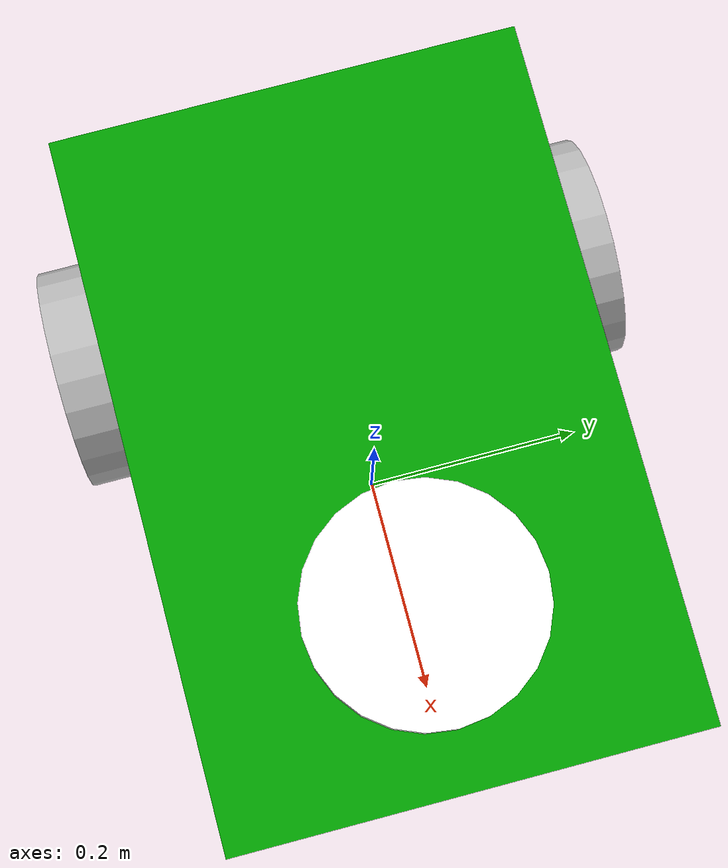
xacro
<?xml version="1.0"?>
<robot name="my_robot" xmlns:xacro="https://www.ros.org/wiki/xacro">
    <xacro:property name="base_length" value="0.6" />
    <xacro:property name="base_width" value="0.4" />
    <xacro:property name="base_height" value="0.2" />
    <xacro:property name="wheel_radius" value="0.1" />
    <xacro:property name="wheel_length" value="0.05" />

        <xacro:macro name="box_inertia" params="mass lx ly lz xyz rpy">
        <inertial>
            <origin xyz="${xyz}" rpy="${rpy}" />
            <mass value="${mass}" />
            <inertia ixx="${(mass / 12.0) * (ly * ly + lz * lz)}" ixy="0" ixz="0"
                     iyy="${(mass / 12.0) * (lx * lx + lz * lz)}" iyz="0"
                     izz="${(mass / 12.0) * (lx * lx + ly * ly)}" />
        </inertial>
    </xacro:macro>

    <xacro:macro name="cylinder_inertia" params="mass r h xyz rpy">
        <inertial>
            <origin xyz="${xyz}" rpy="${rpy}" />
            <mass value="${mass}" />
            <inertia ixx="${(mass / 12.0) * (3 * r * r + h * h)}" ixy="0" ixz="0"
                     iyy="${(mass / 12.0) * (3 * r * r + h * h)}" iyz="0"
                     izz="${(mass / 2.0) * (r * r)}" />
        </inertial>
    </xacro:macro>

    <xacro:macro name="sphere_inertia" params="mass r xyz rpy">
        <inertial>
            <origin xyz="${xyz}" rpy="${rpy}" />
            <mass value="${mass}" />
            <inertia ixx="${(2.0 / 5.0) * mass * r * r}" ixy="0" ixz="0"
                     iyy="${(2.0 / 5.0) * mass * r * r}" iyz="0"
                     izz="${(2.0 / 5.0) * mass * r * r}" />
        </inertial>
    </xacro:macro>

    <material name="green">
        <color rgba="0 0.6 0 1"/>
    </material>

    <link name="base_link">
        <visual>
            <geometry>
                <box size="${base_length} ${base_width} ${base_height}" />
            </geometry>
            <origin xyz="0 0 0.1" rpy="0 0 0" />
            <material name="green" />
        </visual>
        <collision>
            <geometry>
                <box size="${base_length} ${base_width} ${base_height}" />
            </geometry>
            <origin xyz="0 0 ${base_height / 2.0}" rpy="0 0 0" />
        </collision>
        <xacro:box_inertia mass="5.0" lx="${base_length}" ly="${base_width}" lz="${base_height}" xyz="0 0 ${base_height / 2.0}" rpy="0 0 0"/>
    </link>

    <material name="white">
        <color rgba="1 1 1 1"/>
    </material>

    <link name="lidar">
        <visual>
            <geometry>
                <cylinder radius="0.1" length="0.05" />
            </geometry>
            <origin xyz="0 0 0" rpy="0 0 0" />
            <material name="white" />
        </visual>
        <collision>
            <geometry>
                <cylinder radius="${wheel_radius}" length="${wheel_length}" />
            </geometry>
            <origin xyz="0 0 0" rpy="0 0 0" />
        </collision>
        <xacro:cylinder_inertia mass="1.0" h="0.05" r="0.1" xyz="0 0 0" rpy="0 0 0"/>
    </link>

    <joint name="base_lidar_joint" type="fixed">
        <parent link="base_link" />
        <child link="lidar" />
        <origin xyz="0.15 0 0.2" rpy="0 0 0" />
    </joint>

    <material name="gray">
        <color rgba="0.7 0.7 0.7 1" />
    </material>

    <link name="left_wheel">
        <visual>
            <geometry>
                <cylinder radius="${wheel_radius}" length="${wheel_length}" />
            </geometry>
            <origin xyz="0 0 0.025" rpy="0 0 0" />
            <material name="gray" />
        </visual>
        <collision>
            <geometry>
                <cylinder radius="${wheel_radius}" length="${wheel_length}" />
            </geometry>
            <origin xyz="0 0 0" rpy="0 0 0" />
        </collision>
        <xacro:cylinder_inertia mass="1.0" r="${wheel_radius}" h="${wheel_length}" xyz="0 0 0" rpy="0 0 0" />
    </link>

    <joint name="base_left_wheel_joint" type="continuous">
        <parent link="base_link" />
        <child link="left_wheel" />
        <origin xyz="-0.15 0.2 0" rpy="${-pi / 2.0} 0 0" />
        <axis xyz="0 0 1" />
    </joint>

    <link name="right_wheel">
        <visual>
            <geometry>
                <cylinder radius="${wheel_radius}" length="${wheel_length}" />
            </geometry>
            <origin xyz="0 0 0.025" rpy="0 0 0" />
            <material name="gray" />
        </visual>
        <collision>
            <geometry>
                <cylinder radius="${wheel_radius}" length="${wheel_length}" />
            </geometry>
            <origin xyz="0 0 0" rpy="0 0 0" />
        </collision>
        <xacro:cylinder_inertia mass="1.0" r="${wheel_radius}" h="${wheel_length}" xyz="0 0 0" rpy="0 0 0" />
    </link>

    <joint name="base_right_wheel_joint" type="continuous">
        <parent link="base_link" />
        <child link="right_wheel" />
        <origin xyz="-0.15 -0.2 0" rpy="${pi / 2.0} 0 0" />
        <axis xyz="0 0 1" />
    </joint>

    <link name="caster_wheel">
        <visual>
            <geometry>
                <sphere radius="${wheel_length}" />
            </geometry>
            <origin xyz="0 0 0" rpy="0 0 0" />
            <material name="gray" />
        </visual>
        <collision>
            <geometry>
                <sphere radius="${wheel_length}" />
            </geometry>
            <origin xyz="0 0 0" rpy="0 0 0" />
        </collision>
        <xacro:sphere_inertia mass="2.0" r="0.05" xyz="0 0 0" rpy="0 0 0" />
    </link>

    <joint name="base_caster_wheel_joint" type="fixed">
        <parent link="base_link" />
        <child link="caster_wheel" />
        <origin xyz="0.2 0 -0.05" rpy="0 0 0" />
    </joint>

    <link name="base_footprint" />

    <joint name="base_joint" type="fixed">
        <parent link="base_footprint" />
        <child link="base_link" />
        <origin xyz="0 0 0.1" rpy="0 0 0" />
    </joint>

    <gazebo reference="base_link">
        <material>Gazebo/Green</material>
    </gazebo>

    <gazebo reference="left_wheel">
        <material>Gazebo/Gray</material>
    </gazebo>

    <gazebo reference="right_wheel">
        <material>Gazebo/Gray</material>
    </gazebo>

    <gazebo reference="caster_wheel">
        <material>Gazebo/Gray</material>
    </gazebo>

    <gazebo reference="lidar">
        <material>Gazebo/Blue</material>
    </gazebo>

    <gazebo>
        <plugin name="diff_drive_controller" filename="libgazebo_ros_diff_drive.so">
            <!-- Update rate (Hz) -->
            <update_rate>50</update_rate>

            <!-- Wheels -->
            <left_joint>base_left_wheel_joint</left_joint>
            <right_joint>base_right_wheel_joint</right_joint>

            <!-- Kinematics -->
            <wheel_separation>${base_width}</wheel_separation>
            <wheel_diameter>${2 * wheel_radius}</wheel_diameter>

            <!-- Output -->
            <publish_odom>true</publish_odom>
            <publish_odom_tf>true</publish_odom_tf>
            <publish_wheel_tf>true</publish_wheel_tf>

            <odometry_topic>odom</odometry_topic>
            <odometry_frame>odom</odometry_frame>
            <robot_base_frame>base_footprint</robot_base_frame>

            <!-- Input -->
            <command_topic>cmd_vel</command_topic>
        </plugin>
    </gazebo>

    <gazebo reference="lidar">
        <sensor name="lidar_scan" type="ray">
            <always_on>true</always_on>
            <pose> 0 0 0 0 0 0 </pose>
            <visualize>true</visualize>
            <update_rate>10</update_rate>
            <ray>
                <scan>
                    <horizontal>
                        <samples>360</samples>
                        <resolution>1.000</resolution>
                        <min_angle>-3.14</min_angle>
                        <max_angle>3.14</max_angle>
                    </horizontal>
                </scan>
                <range>
                    <min>0.3</min>
                    <max>15.0</max>
                    <resolution>0.015</resolution>
                </range>
            </ray>
            <plugin name="scan" filename="libgazebo_ros_ray_sensor.so">
                <ros>
                    <remapping>~/out:=scan</remapping>
                </ros>
                <output_type>sensor_msgs/LaserScan</output_type>
                <frame_name>lidar</frame_name>
            </plugin>
        </sensor>
    </gazebo>

</robot>
